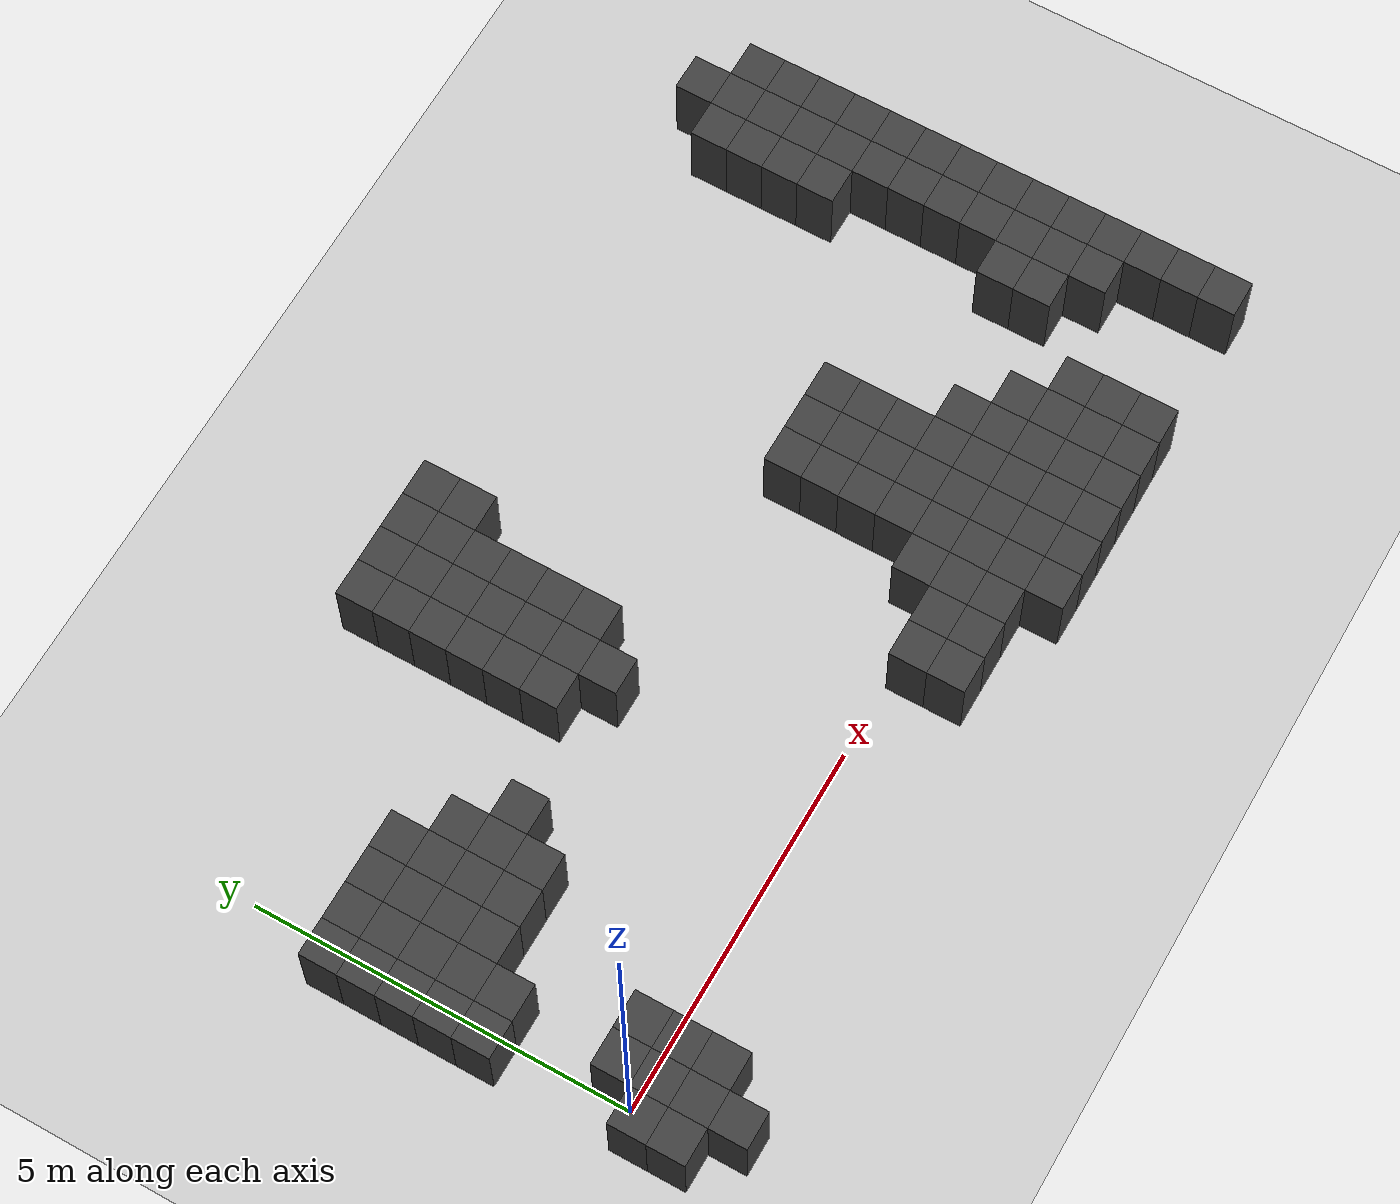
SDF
<sdf version="1.7">
 <world name="map_9713">
  <model name="ground_plane">
   <static>true</static>
   <link name="link">
    <collision name="collision">
     <geometry><plane><normal>0 0 1</normal><size>200 200</size></plane></geometry>
    </collision>
    <visual name="visual">
     <geometry><plane><normal>0 0 1</normal><size>200 200</size></plane></geometry>
     <material><ambient>0.8 0.8 0.8 1</ambient><diffuse>0.8 0.8 0.8 1</diffuse></material>
    </visual>
   </link>
  </model>
  <model name="maze_environment">
   <static>true</static>
   <link name="wall_250">
    <pose>3.750 5.750 0.500 0 0 0</pose>
    <collision name="col"><geometry><box><size>0.5 0.5 1.0</size></box></geometry></collision>
    <visual name="vis">
     <geometry><box><size>0.5 0.5 1.0</size></box></geometry>
     <material><ambient>0.15 0.15 0.15 1</ambient><diffuse>0.25 0.25 0.25 1</diffuse></material>
    </visual>
   </link>
   <link name="wall_251">
    <pose>4.250 5.750 0.500 0 0 0</pose>
    <collision name="col"><geometry><box><size>0.5 0.5 1.0</size></box></geometry></collision>
    <visual name="vis">
     <geometry><box><size>0.5 0.5 1.0</size></box></geometry>
     <material><ambient>0.15 0.15 0.15 1</ambient><diffuse>0.25 0.25 0.25 1</diffuse></material>
    </visual>
   </link>
   <link name="wall_252">
    <pose>4.750 5.750 0.500 0 0 0</pose>
    <collision name="col"><geometry><box><size>0.5 0.5 1.0</size></box></geometry></collision>
    <visual name="vis">
     <geometry><box><size>0.5 0.5 1.0</size></box></geometry>
     <material><ambient>0.15 0.15 0.15 1</ambient><diffuse>0.25 0.25 0.25 1</diffuse></material>
    </visual>
   </link>
   <link name="wall_253">
    <pose>5.250 5.750 0.500 0 0 0</pose>
    <collision name="col"><geometry><box><size>0.5 0.5 1.0</size></box></geometry></collision>
    <visual name="vis">
     <geometry><box><size>0.5 0.5 1.0</size></box></geometry>
     <material><ambient>0.15 0.15 0.15 1</ambient><diffuse>0.25 0.25 0.25 1</diffuse></material>
    </visual>
   </link>
   <link name="wall_254">
    <pose>11.750 5.750 0.500 0 0 0</pose>
    <collision name="col"><geometry><box><size>0.5 0.5 1.0</size></box></geometry></collision>
    <visual name="vis">
     <geometry><box><size>0.5 0.5 1.0</size></box></geometry>
     <material><ambient>0.15 0.15 0.15 1</ambient><diffuse>0.25 0.25 0.25 1</diffuse></material>
    </visual>
   </link>
   <link name="wall_264">
    <pose>3.750 5.250 0.500 0 0 0</pose>
    <collision name="col"><geometry><box><size>0.5 0.5 1.0</size></box></geometry></collision>
    <visual name="vis">
     <geometry><box><size>0.5 0.5 1.0</size></box></geometry>
     <material><ambient>0.15 0.15 0.15 1</ambient><diffuse>0.25 0.25 0.25 1</diffuse></material>
    </visual>
   </link>
   <link name="wall_265">
    <pose>4.250 5.250 0.500 0 0 0</pose>
    <collision name="col"><geometry><box><size>0.5 0.5 1.0</size></box></geometry></collision>
    <visual name="vis">
     <geometry><box><size>0.5 0.5 1.0</size></box></geometry>
     <material><ambient>0.15 0.15 0.15 1</ambient><diffuse>0.25 0.25 0.25 1</diffuse></material>
    </visual>
   </link>
   <link name="wall_266">
    <pose>4.750 5.250 0.500 0 0 0</pose>
    <collision name="col"><geometry><box><size>0.5 0.5 1.0</size></box></geometry></collision>
    <visual name="vis">
     <geometry><box><size>0.5 0.5 1.0</size></box></geometry>
     <material><ambient>0.15 0.15 0.15 1</ambient><diffuse>0.25 0.25 0.25 1</diffuse></material>
    </visual>
   </link>
   <link name="wall_267">
    <pose>5.250 5.250 0.500 0 0 0</pose>
    <collision name="col"><geometry><box><size>0.5 0.5 1.0</size></box></geometry></collision>
    <visual name="vis">
     <geometry><box><size>0.5 0.5 1.0</size></box></geometry>
     <material><ambient>0.15 0.15 0.15 1</ambient><diffuse>0.25 0.25 0.25 1</diffuse></material>
    </visual>
   </link>
   <link name="wall_268">
    <pose>11.250 5.250 0.500 0 0 0</pose>
    <collision name="col"><geometry><box><size>0.5 0.5 1.0</size></box></geometry></collision>
    <visual name="vis">
     <geometry><box><size>0.5 0.5 1.0</size></box></geometry>
     <material><ambient>0.15 0.15 0.15 1</ambient><diffuse>0.25 0.25 0.25 1</diffuse></material>
    </visual>
   </link>
   <link name="wall_269">
    <pose>11.750 5.250 0.500 0 0 0</pose>
    <collision name="col"><geometry><box><size>0.5 0.5 1.0</size></box></geometry></collision>
    <visual name="vis">
     <geometry><box><size>0.5 0.5 1.0</size></box></geometry>
     <material><ambient>0.15 0.15 0.15 1</ambient><diffuse>0.25 0.25 0.25 1</diffuse></material>
    </visual>
   </link>
   <link name="wall_270">
    <pose>12.250 5.250 0.500 0 0 0</pose>
    <collision name="col"><geometry><box><size>0.5 0.5 1.0</size></box></geometry></collision>
    <visual name="vis">
     <geometry><box><size>0.5 0.5 1.0</size></box></geometry>
     <material><ambient>0.15 0.15 0.15 1</ambient><diffuse>0.25 0.25 0.25 1</diffuse></material>
    </visual>
   </link>
   <link name="wall_277">
    <pose>3.750 4.750 0.500 0 0 0</pose>
    <collision name="col"><geometry><box><size>0.5 0.5 1.0</size></box></geometry></collision>
    <visual name="vis">
     <geometry><box><size>0.5 0.5 1.0</size></box></geometry>
     <material><ambient>0.15 0.15 0.15 1</ambient><diffuse>0.25 0.25 0.25 1</diffuse></material>
    </visual>
   </link>
   <link name="wall_278">
    <pose>4.250 4.750 0.500 0 0 0</pose>
    <collision name="col"><geometry><box><size>0.5 0.5 1.0</size></box></geometry></collision>
    <visual name="vis">
     <geometry><box><size>0.5 0.5 1.0</size></box></geometry>
     <material><ambient>0.15 0.15 0.15 1</ambient><diffuse>0.25 0.25 0.25 1</diffuse></material>
    </visual>
   </link>
   <link name="wall_279">
    <pose>4.750 4.750 0.500 0 0 0</pose>
    <collision name="col"><geometry><box><size>0.5 0.5 1.0</size></box></geometry></collision>
    <visual name="vis">
     <geometry><box><size>0.5 0.5 1.0</size></box></geometry>
     <material><ambient>0.15 0.15 0.15 1</ambient><diffuse>0.25 0.25 0.25 1</diffuse></material>
    </visual>
   </link>
   <link name="wall_280">
    <pose>11.250 4.750 0.500 0 0 0</pose>
    <collision name="col"><geometry><box><size>0.5 0.5 1.0</size></box></geometry></collision>
    <visual name="vis">
     <geometry><box><size>0.5 0.5 1.0</size></box></geometry>
     <material><ambient>0.15 0.15 0.15 1</ambient><diffuse>0.25 0.25 0.25 1</diffuse></material>
    </visual>
   </link>
   <link name="wall_281">
    <pose>11.750 4.750 0.500 0 0 0</pose>
    <collision name="col"><geometry><box><size>0.5 0.5 1.0</size></box></geometry></collision>
    <visual name="vis">
     <geometry><box><size>0.5 0.5 1.0</size></box></geometry>
     <material><ambient>0.15 0.15 0.15 1</ambient><diffuse>0.25 0.25 0.25 1</diffuse></material>
    </visual>
   </link>
   <link name="wall_282">
    <pose>12.250 4.750 0.500 0 0 0</pose>
    <collision name="col"><geometry><box><size>0.5 0.5 1.0</size></box></geometry></collision>
    <visual name="vis">
     <geometry><box><size>0.5 0.5 1.0</size></box></geometry>
     <material><ambient>0.15 0.15 0.15 1</ambient><diffuse>0.25 0.25 0.25 1</diffuse></material>
    </visual>
   </link>
   <link name="wall_288">
    <pose>3.750 4.250 0.500 0 0 0</pose>
    <collision name="col"><geometry><box><size>0.5 0.5 1.0</size></box></geometry></collision>
    <visual name="vis">
     <geometry><box><size>0.5 0.5 1.0</size></box></geometry>
     <material><ambient>0.15 0.15 0.15 1</ambient><diffuse>0.25 0.25 0.25 1</diffuse></material>
    </visual>
   </link>
   <link name="wall_289">
    <pose>4.250 4.250 0.500 0 0 0</pose>
    <collision name="col"><geometry><box><size>0.5 0.5 1.0</size></box></geometry></collision>
    <visual name="vis">
     <geometry><box><size>0.5 0.5 1.0</size></box></geometry>
     <material><ambient>0.15 0.15 0.15 1</ambient><diffuse>0.25 0.25 0.25 1</diffuse></material>
    </visual>
   </link>
   <link name="wall_290">
    <pose>4.750 4.250 0.500 0 0 0</pose>
    <collision name="col"><geometry><box><size>0.5 0.5 1.0</size></box></geometry></collision>
    <visual name="vis">
     <geometry><box><size>0.5 0.5 1.0</size></box></geometry>
     <material><ambient>0.15 0.15 0.15 1</ambient><diffuse>0.25 0.25 0.25 1</diffuse></material>
    </visual>
   </link>
   <link name="wall_291">
    <pose>11.250 4.250 0.500 0 0 0</pose>
    <collision name="col"><geometry><box><size>0.5 0.5 1.0</size></box></geometry></collision>
    <visual name="vis">
     <geometry><box><size>0.5 0.5 1.0</size></box></geometry>
     <material><ambient>0.15 0.15 0.15 1</ambient><diffuse>0.25 0.25 0.25 1</diffuse></material>
    </visual>
   </link>
   <link name="wall_292">
    <pose>11.750 4.250 0.500 0 0 0</pose>
    <collision name="col"><geometry><box><size>0.5 0.5 1.0</size></box></geometry></collision>
    <visual name="vis">
     <geometry><box><size>0.5 0.5 1.0</size></box></geometry>
     <material><ambient>0.15 0.15 0.15 1</ambient><diffuse>0.25 0.25 0.25 1</diffuse></material>
    </visual>
   </link>
   <link name="wall_293">
    <pose>12.250 4.250 0.500 0 0 0</pose>
    <collision name="col"><geometry><box><size>0.5 0.5 1.0</size></box></geometry></collision>
    <visual name="vis">
     <geometry><box><size>0.5 0.5 1.0</size></box></geometry>
     <material><ambient>0.15 0.15 0.15 1</ambient><diffuse>0.25 0.25 0.25 1</diffuse></material>
    </visual>
   </link>
   <link name="wall_301">
    <pose>-0.250 3.750 0.500 0 0 0</pose>
    <collision name="col"><geometry><box><size>0.5 0.5 1.0</size></box></geometry></collision>
    <visual name="vis">
     <geometry><box><size>0.5 0.5 1.0</size></box></geometry>
     <material><ambient>0.15 0.15 0.15 1</ambient><diffuse>0.25 0.25 0.25 1</diffuse></material>
    </visual>
   </link>
   <link name="wall_302">
    <pose>0.250 3.750 0.500 0 0 0</pose>
    <collision name="col"><geometry><box><size>0.5 0.5 1.0</size></box></geometry></collision>
    <visual name="vis">
     <geometry><box><size>0.5 0.5 1.0</size></box></geometry>
     <material><ambient>0.15 0.15 0.15 1</ambient><diffuse>0.25 0.25 0.25 1</diffuse></material>
    </visual>
   </link>
   <link name="wall_303">
    <pose>0.750 3.750 0.500 0 0 0</pose>
    <collision name="col"><geometry><box><size>0.5 0.5 1.0</size></box></geometry></collision>
    <visual name="vis">
     <geometry><box><size>0.5 0.5 1.0</size></box></geometry>
     <material><ambient>0.15 0.15 0.15 1</ambient><diffuse>0.25 0.25 0.25 1</diffuse></material>
    </visual>
   </link>
   <link name="wall_304">
    <pose>1.250 3.750 0.500 0 0 0</pose>
    <collision name="col"><geometry><box><size>0.5 0.5 1.0</size></box></geometry></collision>
    <visual name="vis">
     <geometry><box><size>0.5 0.5 1.0</size></box></geometry>
     <material><ambient>0.15 0.15 0.15 1</ambient><diffuse>0.25 0.25 0.25 1</diffuse></material>
    </visual>
   </link>
   <link name="wall_305">
    <pose>3.750 3.750 0.500 0 0 0</pose>
    <collision name="col"><geometry><box><size>0.5 0.5 1.0</size></box></geometry></collision>
    <visual name="vis">
     <geometry><box><size>0.5 0.5 1.0</size></box></geometry>
     <material><ambient>0.15 0.15 0.15 1</ambient><diffuse>0.25 0.25 0.25 1</diffuse></material>
    </visual>
   </link>
   <link name="wall_306">
    <pose>4.250 3.750 0.500 0 0 0</pose>
    <collision name="col"><geometry><box><size>0.5 0.5 1.0</size></box></geometry></collision>
    <visual name="vis">
     <geometry><box><size>0.5 0.5 1.0</size></box></geometry>
     <material><ambient>0.15 0.15 0.15 1</ambient><diffuse>0.25 0.25 0.25 1</diffuse></material>
    </visual>
   </link>
   <link name="wall_307">
    <pose>4.750 3.750 0.500 0 0 0</pose>
    <collision name="col"><geometry><box><size>0.5 0.5 1.0</size></box></geometry></collision>
    <visual name="vis">
     <geometry><box><size>0.5 0.5 1.0</size></box></geometry>
     <material><ambient>0.15 0.15 0.15 1</ambient><diffuse>0.25 0.25 0.25 1</diffuse></material>
    </visual>
   </link>
   <link name="wall_308">
    <pose>11.250 3.750 0.500 0 0 0</pose>
    <collision name="col"><geometry><box><size>0.5 0.5 1.0</size></box></geometry></collision>
    <visual name="vis">
     <geometry><box><size>0.5 0.5 1.0</size></box></geometry>
     <material><ambient>0.15 0.15 0.15 1</ambient><diffuse>0.25 0.25 0.25 1</diffuse></material>
    </visual>
   </link>
   <link name="wall_309">
    <pose>11.750 3.750 0.500 0 0 0</pose>
    <collision name="col"><geometry><box><size>0.5 0.5 1.0</size></box></geometry></collision>
    <visual name="vis">
     <geometry><box><size>0.5 0.5 1.0</size></box></geometry>
     <material><ambient>0.15 0.15 0.15 1</ambient><diffuse>0.25 0.25 0.25 1</diffuse></material>
    </visual>
   </link>
   <link name="wall_310">
    <pose>12.250 3.750 0.500 0 0 0</pose>
    <collision name="col"><geometry><box><size>0.5 0.5 1.0</size></box></geometry></collision>
    <visual name="vis">
     <geometry><box><size>0.5 0.5 1.0</size></box></geometry>
     <material><ambient>0.15 0.15 0.15 1</ambient><diffuse>0.25 0.25 0.25 1</diffuse></material>
    </visual>
   </link>
   <link name="wall_318">
    <pose>-0.250 3.250 0.500 0 0 0</pose>
    <collision name="col"><geometry><box><size>0.5 0.5 1.0</size></box></geometry></collision>
    <visual name="vis">
     <geometry><box><size>0.5 0.5 1.0</size></box></geometry>
     <material><ambient>0.15 0.15 0.15 1</ambient><diffuse>0.25 0.25 0.25 1</diffuse></material>
    </visual>
   </link>
   <link name="wall_319">
    <pose>0.250 3.250 0.500 0 0 0</pose>
    <collision name="col"><geometry><box><size>0.5 0.5 1.0</size></box></geometry></collision>
    <visual name="vis">
     <geometry><box><size>0.5 0.5 1.0</size></box></geometry>
     <material><ambient>0.15 0.15 0.15 1</ambient><diffuse>0.25 0.25 0.25 1</diffuse></material>
    </visual>
   </link>
   <link name="wall_320">
    <pose>0.750 3.250 0.500 0 0 0</pose>
    <collision name="col"><geometry><box><size>0.5 0.5 1.0</size></box></geometry></collision>
    <visual name="vis">
     <geometry><box><size>0.5 0.5 1.0</size></box></geometry>
     <material><ambient>0.15 0.15 0.15 1</ambient><diffuse>0.25 0.25 0.25 1</diffuse></material>
    </visual>
   </link>
   <link name="wall_321">
    <pose>1.250 3.250 0.500 0 0 0</pose>
    <collision name="col"><geometry><box><size>0.5 0.5 1.0</size></box></geometry></collision>
    <visual name="vis">
     <geometry><box><size>0.5 0.5 1.0</size></box></geometry>
     <material><ambient>0.15 0.15 0.15 1</ambient><diffuse>0.25 0.25 0.25 1</diffuse></material>
    </visual>
   </link>
   <link name="wall_322">
    <pose>1.750 3.250 0.500 0 0 0</pose>
    <collision name="col"><geometry><box><size>0.5 0.5 1.0</size></box></geometry></collision>
    <visual name="vis">
     <geometry><box><size>0.5 0.5 1.0</size></box></geometry>
     <material><ambient>0.15 0.15 0.15 1</ambient><diffuse>0.25 0.25 0.25 1</diffuse></material>
    </visual>
   </link>
   <link name="wall_323">
    <pose>3.750 3.250 0.500 0 0 0</pose>
    <collision name="col"><geometry><box><size>0.5 0.5 1.0</size></box></geometry></collision>
    <visual name="vis">
     <geometry><box><size>0.5 0.5 1.0</size></box></geometry>
     <material><ambient>0.15 0.15 0.15 1</ambient><diffuse>0.25 0.25 0.25 1</diffuse></material>
    </visual>
   </link>
   <link name="wall_324">
    <pose>4.250 3.250 0.500 0 0 0</pose>
    <collision name="col"><geometry><box><size>0.5 0.5 1.0</size></box></geometry></collision>
    <visual name="vis">
     <geometry><box><size>0.5 0.5 1.0</size></box></geometry>
     <material><ambient>0.15 0.15 0.15 1</ambient><diffuse>0.25 0.25 0.25 1</diffuse></material>
    </visual>
   </link>
   <link name="wall_325">
    <pose>4.750 3.250 0.500 0 0 0</pose>
    <collision name="col"><geometry><box><size>0.5 0.5 1.0</size></box></geometry></collision>
    <visual name="vis">
     <geometry><box><size>0.5 0.5 1.0</size></box></geometry>
     <material><ambient>0.15 0.15 0.15 1</ambient><diffuse>0.25 0.25 0.25 1</diffuse></material>
    </visual>
   </link>
   <link name="wall_326">
    <pose>11.750 3.250 0.500 0 0 0</pose>
    <collision name="col"><geometry><box><size>0.5 0.5 1.0</size></box></geometry></collision>
    <visual name="vis">
     <geometry><box><size>0.5 0.5 1.0</size></box></geometry>
     <material><ambient>0.15 0.15 0.15 1</ambient><diffuse>0.25 0.25 0.25 1</diffuse></material>
    </visual>
   </link>
   <link name="wall_327">
    <pose>12.250 3.250 0.500 0 0 0</pose>
    <collision name="col"><geometry><box><size>0.5 0.5 1.0</size></box></geometry></collision>
    <visual name="vis">
     <geometry><box><size>0.5 0.5 1.0</size></box></geometry>
     <material><ambient>0.15 0.15 0.15 1</ambient><diffuse>0.25 0.25 0.25 1</diffuse></material>
    </visual>
   </link>
   <link name="wall_337">
    <pose>-0.250 2.750 0.500 0 0 0</pose>
    <collision name="col"><geometry><box><size>0.5 0.5 1.0</size></box></geometry></collision>
    <visual name="vis">
     <geometry><box><size>0.5 0.5 1.0</size></box></geometry>
     <material><ambient>0.15 0.15 0.15 1</ambient><diffuse>0.25 0.25 0.25 1</diffuse></material>
    </visual>
   </link>
   <link name="wall_338">
    <pose>0.250 2.750 0.500 0 0 0</pose>
    <collision name="col"><geometry><box><size>0.5 0.5 1.0</size></box></geometry></collision>
    <visual name="vis">
     <geometry><box><size>0.5 0.5 1.0</size></box></geometry>
     <material><ambient>0.15 0.15 0.15 1</ambient><diffuse>0.25 0.25 0.25 1</diffuse></material>
    </visual>
   </link>
   <link name="wall_339">
    <pose>0.750 2.750 0.500 0 0 0</pose>
    <collision name="col"><geometry><box><size>0.5 0.5 1.0</size></box></geometry></collision>
    <visual name="vis">
     <geometry><box><size>0.5 0.5 1.0</size></box></geometry>
     <material><ambient>0.15 0.15 0.15 1</ambient><diffuse>0.25 0.25 0.25 1</diffuse></material>
    </visual>
   </link>
   <link name="wall_340">
    <pose>1.250 2.750 0.500 0 0 0</pose>
    <collision name="col"><geometry><box><size>0.5 0.5 1.0</size></box></geometry></collision>
    <visual name="vis">
     <geometry><box><size>0.5 0.5 1.0</size></box></geometry>
     <material><ambient>0.15 0.15 0.15 1</ambient><diffuse>0.25 0.25 0.25 1</diffuse></material>
    </visual>
   </link>
   <link name="wall_341">
    <pose>1.750 2.750 0.500 0 0 0</pose>
    <collision name="col"><geometry><box><size>0.5 0.5 1.0</size></box></geometry></collision>
    <visual name="vis">
     <geometry><box><size>0.5 0.5 1.0</size></box></geometry>
     <material><ambient>0.15 0.15 0.15 1</ambient><diffuse>0.25 0.25 0.25 1</diffuse></material>
    </visual>
   </link>
   <link name="wall_342">
    <pose>2.250 2.750 0.500 0 0 0</pose>
    <collision name="col"><geometry><box><size>0.5 0.5 1.0</size></box></geometry></collision>
    <visual name="vis">
     <geometry><box><size>0.5 0.5 1.0</size></box></geometry>
     <material><ambient>0.15 0.15 0.15 1</ambient><diffuse>0.25 0.25 0.25 1</diffuse></material>
    </visual>
   </link>
   <link name="wall_343">
    <pose>4.250 2.750 0.500 0 0 0</pose>
    <collision name="col"><geometry><box><size>0.5 0.5 1.0</size></box></geometry></collision>
    <visual name="vis">
     <geometry><box><size>0.5 0.5 1.0</size></box></geometry>
     <material><ambient>0.15 0.15 0.15 1</ambient><diffuse>0.25 0.25 0.25 1</diffuse></material>
    </visual>
   </link>
   <link name="wall_344">
    <pose>11.750 2.750 0.500 0 0 0</pose>
    <collision name="col"><geometry><box><size>0.5 0.5 1.0</size></box></geometry></collision>
    <visual name="vis">
     <geometry><box><size>0.5 0.5 1.0</size></box></geometry>
     <material><ambient>0.15 0.15 0.15 1</ambient><diffuse>0.25 0.25 0.25 1</diffuse></material>
    </visual>
   </link>
   <link name="wall_345">
    <pose>12.250 2.750 0.500 0 0 0</pose>
    <collision name="col"><geometry><box><size>0.5 0.5 1.0</size></box></geometry></collision>
    <visual name="vis">
     <geometry><box><size>0.5 0.5 1.0</size></box></geometry>
     <material><ambient>0.15 0.15 0.15 1</ambient><diffuse>0.25 0.25 0.25 1</diffuse></material>
    </visual>
   </link>
   <link name="wall_358">
    <pose>-0.250 2.250 0.500 0 0 0</pose>
    <collision name="col"><geometry><box><size>0.5 0.5 1.0</size></box></geometry></collision>
    <visual name="vis">
     <geometry><box><size>0.5 0.5 1.0</size></box></geometry>
     <material><ambient>0.15 0.15 0.15 1</ambient><diffuse>0.25 0.25 0.25 1</diffuse></material>
    </visual>
   </link>
   <link name="wall_359">
    <pose>0.250 2.250 0.500 0 0 0</pose>
    <collision name="col"><geometry><box><size>0.5 0.5 1.0</size></box></geometry></collision>
    <visual name="vis">
     <geometry><box><size>0.5 0.5 1.0</size></box></geometry>
     <material><ambient>0.15 0.15 0.15 1</ambient><diffuse>0.25 0.25 0.25 1</diffuse></material>
    </visual>
   </link>
   <link name="wall_360">
    <pose>0.750 2.250 0.500 0 0 0</pose>
    <collision name="col"><geometry><box><size>0.5 0.5 1.0</size></box></geometry></collision>
    <visual name="vis">
     <geometry><box><size>0.5 0.5 1.0</size></box></geometry>
     <material><ambient>0.15 0.15 0.15 1</ambient><diffuse>0.25 0.25 0.25 1</diffuse></material>
    </visual>
   </link>
   <link name="wall_361">
    <pose>1.250 2.250 0.500 0 0 0</pose>
    <collision name="col"><geometry><box><size>0.5 0.5 1.0</size></box></geometry></collision>
    <visual name="vis">
     <geometry><box><size>0.5 0.5 1.0</size></box></geometry>
     <material><ambient>0.15 0.15 0.15 1</ambient><diffuse>0.25 0.25 0.25 1</diffuse></material>
    </visual>
   </link>
   <link name="wall_362">
    <pose>1.750 2.250 0.500 0 0 0</pose>
    <collision name="col"><geometry><box><size>0.5 0.5 1.0</size></box></geometry></collision>
    <visual name="vis">
     <geometry><box><size>0.5 0.5 1.0</size></box></geometry>
     <material><ambient>0.15 0.15 0.15 1</ambient><diffuse>0.25 0.25 0.25 1</diffuse></material>
    </visual>
   </link>
   <link name="wall_363">
    <pose>7.750 2.250 0.500 0 0 0</pose>
    <collision name="col"><geometry><box><size>0.5 0.5 1.0</size></box></geometry></collision>
    <visual name="vis">
     <geometry><box><size>0.5 0.5 1.0</size></box></geometry>
     <material><ambient>0.15 0.15 0.15 1</ambient><diffuse>0.25 0.25 0.25 1</diffuse></material>
    </visual>
   </link>
   <link name="wall_364">
    <pose>8.250 2.250 0.500 0 0 0</pose>
    <collision name="col"><geometry><box><size>0.5 0.5 1.0</size></box></geometry></collision>
    <visual name="vis">
     <geometry><box><size>0.5 0.5 1.0</size></box></geometry>
     <material><ambient>0.15 0.15 0.15 1</ambient><diffuse>0.25 0.25 0.25 1</diffuse></material>
    </visual>
   </link>
   <link name="wall_365">
    <pose>8.750 2.250 0.500 0 0 0</pose>
    <collision name="col"><geometry><box><size>0.5 0.5 1.0</size></box></geometry></collision>
    <visual name="vis">
     <geometry><box><size>0.5 0.5 1.0</size></box></geometry>
     <material><ambient>0.15 0.15 0.15 1</ambient><diffuse>0.25 0.25 0.25 1</diffuse></material>
    </visual>
   </link>
   <link name="wall_366">
    <pose>11.750 2.250 0.500 0 0 0</pose>
    <collision name="col"><geometry><box><size>0.5 0.5 1.0</size></box></geometry></collision>
    <visual name="vis">
     <geometry><box><size>0.5 0.5 1.0</size></box></geometry>
     <material><ambient>0.15 0.15 0.15 1</ambient><diffuse>0.25 0.25 0.25 1</diffuse></material>
    </visual>
   </link>
   <link name="wall_367">
    <pose>12.250 2.250 0.500 0 0 0</pose>
    <collision name="col"><geometry><box><size>0.5 0.5 1.0</size></box></geometry></collision>
    <visual name="vis">
     <geometry><box><size>0.5 0.5 1.0</size></box></geometry>
     <material><ambient>0.15 0.15 0.15 1</ambient><diffuse>0.25 0.25 0.25 1</diffuse></material>
    </visual>
   </link>
   <link name="wall_378">
    <pose>-0.250 1.750 0.500 0 0 0</pose>
    <collision name="col"><geometry><box><size>0.5 0.5 1.0</size></box></geometry></collision>
    <visual name="vis">
     <geometry><box><size>0.5 0.5 1.0</size></box></geometry>
     <material><ambient>0.15 0.15 0.15 1</ambient><diffuse>0.25 0.25 0.25 1</diffuse></material>
    </visual>
   </link>
   <link name="wall_379">
    <pose>0.250 1.750 0.500 0 0 0</pose>
    <collision name="col"><geometry><box><size>0.5 0.5 1.0</size></box></geometry></collision>
    <visual name="vis">
     <geometry><box><size>0.5 0.5 1.0</size></box></geometry>
     <material><ambient>0.15 0.15 0.15 1</ambient><diffuse>0.25 0.25 0.25 1</diffuse></material>
    </visual>
   </link>
   <link name="wall_380">
    <pose>7.750 1.750 0.500 0 0 0</pose>
    <collision name="col"><geometry><box><size>0.5 0.5 1.0</size></box></geometry></collision>
    <visual name="vis">
     <geometry><box><size>0.5 0.5 1.0</size></box></geometry>
     <material><ambient>0.15 0.15 0.15 1</ambient><diffuse>0.25 0.25 0.25 1</diffuse></material>
    </visual>
   </link>
   <link name="wall_381">
    <pose>8.250 1.750 0.500 0 0 0</pose>
    <collision name="col"><geometry><box><size>0.5 0.5 1.0</size></box></geometry></collision>
    <visual name="vis">
     <geometry><box><size>0.5 0.5 1.0</size></box></geometry>
     <material><ambient>0.15 0.15 0.15 1</ambient><diffuse>0.25 0.25 0.25 1</diffuse></material>
    </visual>
   </link>
   <link name="wall_382">
    <pose>8.750 1.750 0.500 0 0 0</pose>
    <collision name="col"><geometry><box><size>0.5 0.5 1.0</size></box></geometry></collision>
    <visual name="vis">
     <geometry><box><size>0.5 0.5 1.0</size></box></geometry>
     <material><ambient>0.15 0.15 0.15 1</ambient><diffuse>0.25 0.25 0.25 1</diffuse></material>
    </visual>
   </link>
   <link name="wall_383">
    <pose>11.750 1.750 0.500 0 0 0</pose>
    <collision name="col"><geometry><box><size>0.5 0.5 1.0</size></box></geometry></collision>
    <visual name="vis">
     <geometry><box><size>0.5 0.5 1.0</size></box></geometry>
     <material><ambient>0.15 0.15 0.15 1</ambient><diffuse>0.25 0.25 0.25 1</diffuse></material>
    </visual>
   </link>
   <link name="wall_384">
    <pose>12.250 1.750 0.500 0 0 0</pose>
    <collision name="col"><geometry><box><size>0.5 0.5 1.0</size></box></geometry></collision>
    <visual name="vis">
     <geometry><box><size>0.5 0.5 1.0</size></box></geometry>
     <material><ambient>0.15 0.15 0.15 1</ambient><diffuse>0.25 0.25 0.25 1</diffuse></material>
    </visual>
   </link>
   <link name="wall_394">
    <pose>7.750 1.250 0.500 0 0 0</pose>
    <collision name="col"><geometry><box><size>0.5 0.5 1.0</size></box></geometry></collision>
    <visual name="vis">
     <geometry><box><size>0.5 0.5 1.0</size></box></geometry>
     <material><ambient>0.15 0.15 0.15 1</ambient><diffuse>0.25 0.25 0.25 1</diffuse></material>
    </visual>
   </link>
   <link name="wall_395">
    <pose>8.250 1.250 0.500 0 0 0</pose>
    <collision name="col"><geometry><box><size>0.5 0.5 1.0</size></box></geometry></collision>
    <visual name="vis">
     <geometry><box><size>0.5 0.5 1.0</size></box></geometry>
     <material><ambient>0.15 0.15 0.15 1</ambient><diffuse>0.25 0.25 0.25 1</diffuse></material>
    </visual>
   </link>
   <link name="wall_396">
    <pose>8.750 1.250 0.500 0 0 0</pose>
    <collision name="col"><geometry><box><size>0.5 0.5 1.0</size></box></geometry></collision>
    <visual name="vis">
     <geometry><box><size>0.5 0.5 1.0</size></box></geometry>
     <material><ambient>0.15 0.15 0.15 1</ambient><diffuse>0.25 0.25 0.25 1</diffuse></material>
    </visual>
   </link>
   <link name="wall_397">
    <pose>11.250 1.250 0.500 0 0 0</pose>
    <collision name="col"><geometry><box><size>0.5 0.5 1.0</size></box></geometry></collision>
    <visual name="vis">
     <geometry><box><size>0.5 0.5 1.0</size></box></geometry>
     <material><ambient>0.15 0.15 0.15 1</ambient><diffuse>0.25 0.25 0.25 1</diffuse></material>
    </visual>
   </link>
   <link name="wall_398">
    <pose>11.750 1.250 0.500 0 0 0</pose>
    <collision name="col"><geometry><box><size>0.5 0.5 1.0</size></box></geometry></collision>
    <visual name="vis">
     <geometry><box><size>0.5 0.5 1.0</size></box></geometry>
     <material><ambient>0.15 0.15 0.15 1</ambient><diffuse>0.25 0.25 0.25 1</diffuse></material>
    </visual>
   </link>
   <link name="wall_399">
    <pose>12.250 1.250 0.500 0 0 0</pose>
    <collision name="col"><geometry><box><size>0.5 0.5 1.0</size></box></geometry></collision>
    <visual name="vis">
     <geometry><box><size>0.5 0.5 1.0</size></box></geometry>
     <material><ambient>0.15 0.15 0.15 1</ambient><diffuse>0.25 0.25 0.25 1</diffuse></material>
    </visual>
   </link>
   <link name="wall_408">
    <pose>7.750 0.750 0.500 0 0 0</pose>
    <collision name="col"><geometry><box><size>0.5 0.5 1.0</size></box></geometry></collision>
    <visual name="vis">
     <geometry><box><size>0.5 0.5 1.0</size></box></geometry>
     <material><ambient>0.15 0.15 0.15 1</ambient><diffuse>0.25 0.25 0.25 1</diffuse></material>
    </visual>
   </link>
   <link name="wall_409">
    <pose>8.250 0.750 0.500 0 0 0</pose>
    <collision name="col"><geometry><box><size>0.5 0.5 1.0</size></box></geometry></collision>
    <visual name="vis">
     <geometry><box><size>0.5 0.5 1.0</size></box></geometry>
     <material><ambient>0.15 0.15 0.15 1</ambient><diffuse>0.25 0.25 0.25 1</diffuse></material>
    </visual>
   </link>
   <link name="wall_410">
    <pose>8.750 0.750 0.500 0 0 0</pose>
    <collision name="col"><geometry><box><size>0.5 0.5 1.0</size></box></geometry></collision>
    <visual name="vis">
     <geometry><box><size>0.5 0.5 1.0</size></box></geometry>
     <material><ambient>0.15 0.15 0.15 1</ambient><diffuse>0.25 0.25 0.25 1</diffuse></material>
    </visual>
   </link>
   <link name="wall_411">
    <pose>9.250 0.750 0.500 0 0 0</pose>
    <collision name="col"><geometry><box><size>0.5 0.5 1.0</size></box></geometry></collision>
    <visual name="vis">
     <geometry><box><size>0.5 0.5 1.0</size></box></geometry>
     <material><ambient>0.15 0.15 0.15 1</ambient><diffuse>0.25 0.25 0.25 1</diffuse></material>
    </visual>
   </link>
   <link name="wall_412">
    <pose>11.250 0.750 0.500 0 0 0</pose>
    <collision name="col"><geometry><box><size>0.5 0.5 1.0</size></box></geometry></collision>
    <visual name="vis">
     <geometry><box><size>0.5 0.5 1.0</size></box></geometry>
     <material><ambient>0.15 0.15 0.15 1</ambient><diffuse>0.25 0.25 0.25 1</diffuse></material>
    </visual>
   </link>
   <link name="wall_413">
    <pose>11.750 0.750 0.500 0 0 0</pose>
    <collision name="col"><geometry><box><size>0.5 0.5 1.0</size></box></geometry></collision>
    <visual name="vis">
     <geometry><box><size>0.5 0.5 1.0</size></box></geometry>
     <material><ambient>0.15 0.15 0.15 1</ambient><diffuse>0.25 0.25 0.25 1</diffuse></material>
    </visual>
   </link>
   <link name="wall_414">
    <pose>12.250 0.750 0.500 0 0 0</pose>
    <collision name="col"><geometry><box><size>0.5 0.5 1.0</size></box></geometry></collision>
    <visual name="vis">
     <geometry><box><size>0.5 0.5 1.0</size></box></geometry>
     <material><ambient>0.15 0.15 0.15 1</ambient><diffuse>0.25 0.25 0.25 1</diffuse></material>
    </visual>
   </link>
   <link name="wall_425">
    <pose>0.250 0.250 0.500 0 0 0</pose>
    <collision name="col"><geometry><box><size>0.5 0.5 1.0</size></box></geometry></collision>
    <visual name="vis">
     <geometry><box><size>0.5 0.5 1.0</size></box></geometry>
     <material><ambient>0.15 0.15 0.15 1</ambient><diffuse>0.25 0.25 0.25 1</diffuse></material>
    </visual>
   </link>
   <link name="wall_426">
    <pose>0.750 0.250 0.500 0 0 0</pose>
    <collision name="col"><geometry><box><size>0.5 0.5 1.0</size></box></geometry></collision>
    <visual name="vis">
     <geometry><box><size>0.5 0.5 1.0</size></box></geometry>
     <material><ambient>0.15 0.15 0.15 1</ambient><diffuse>0.25 0.25 0.25 1</diffuse></material>
    </visual>
   </link>
   <link name="wall_427">
    <pose>7.250 0.250 0.500 0 0 0</pose>
    <collision name="col"><geometry><box><size>0.5 0.5 1.0</size></box></geometry></collision>
    <visual name="vis">
     <geometry><box><size>0.5 0.5 1.0</size></box></geometry>
     <material><ambient>0.15 0.15 0.15 1</ambient><diffuse>0.25 0.25 0.25 1</diffuse></material>
    </visual>
   </link>
   <link name="wall_428">
    <pose>7.750 0.250 0.500 0 0 0</pose>
    <collision name="col"><geometry><box><size>0.5 0.5 1.0</size></box></geometry></collision>
    <visual name="vis">
     <geometry><box><size>0.5 0.5 1.0</size></box></geometry>
     <material><ambient>0.15 0.15 0.15 1</ambient><diffuse>0.25 0.25 0.25 1</diffuse></material>
    </visual>
   </link>
   <link name="wall_429">
    <pose>8.250 0.250 0.500 0 0 0</pose>
    <collision name="col"><geometry><box><size>0.5 0.5 1.0</size></box></geometry></collision>
    <visual name="vis">
     <geometry><box><size>0.5 0.5 1.0</size></box></geometry>
     <material><ambient>0.15 0.15 0.15 1</ambient><diffuse>0.25 0.25 0.25 1</diffuse></material>
    </visual>
   </link>
   <link name="wall_430">
    <pose>8.750 0.250 0.500 0 0 0</pose>
    <collision name="col"><geometry><box><size>0.5 0.5 1.0</size></box></geometry></collision>
    <visual name="vis">
     <geometry><box><size>0.5 0.5 1.0</size></box></geometry>
     <material><ambient>0.15 0.15 0.15 1</ambient><diffuse>0.25 0.25 0.25 1</diffuse></material>
    </visual>
   </link>
   <link name="wall_431">
    <pose>9.250 0.250 0.500 0 0 0</pose>
    <collision name="col"><geometry><box><size>0.5 0.5 1.0</size></box></geometry></collision>
    <visual name="vis">
     <geometry><box><size>0.5 0.5 1.0</size></box></geometry>
     <material><ambient>0.15 0.15 0.15 1</ambient><diffuse>0.25 0.25 0.25 1</diffuse></material>
    </visual>
   </link>
   <link name="wall_432">
    <pose>9.750 0.250 0.500 0 0 0</pose>
    <collision name="col"><geometry><box><size>0.5 0.5 1.0</size></box></geometry></collision>
    <visual name="vis">
     <geometry><box><size>0.5 0.5 1.0</size></box></geometry>
     <material><ambient>0.15 0.15 0.15 1</ambient><diffuse>0.25 0.25 0.25 1</diffuse></material>
    </visual>
   </link>
   <link name="wall_433">
    <pose>11.750 0.250 0.500 0 0 0</pose>
    <collision name="col"><geometry><box><size>0.5 0.5 1.0</size></box></geometry></collision>
    <visual name="vis">
     <geometry><box><size>0.5 0.5 1.0</size></box></geometry>
     <material><ambient>0.15 0.15 0.15 1</ambient><diffuse>0.25 0.25 0.25 1</diffuse></material>
    </visual>
   </link>
   <link name="wall_434">
    <pose>12.250 0.250 0.500 0 0 0</pose>
    <collision name="col"><geometry><box><size>0.5 0.5 1.0</size></box></geometry></collision>
    <visual name="vis">
     <geometry><box><size>0.5 0.5 1.0</size></box></geometry>
     <material><ambient>0.15 0.15 0.15 1</ambient><diffuse>0.25 0.25 0.25 1</diffuse></material>
    </visual>
   </link>
   <link name="wall_448">
    <pose>-0.250 -0.250 0.500 0 0 0</pose>
    <collision name="col"><geometry><box><size>0.5 0.5 1.0</size></box></geometry></collision>
    <visual name="vis">
     <geometry><box><size>0.5 0.5 1.0</size></box></geometry>
     <material><ambient>0.15 0.15 0.15 1</ambient><diffuse>0.25 0.25 0.25 1</diffuse></material>
    </visual>
   </link>
   <link name="wall_449">
    <pose>0.250 -0.250 0.500 0 0 0</pose>
    <collision name="col"><geometry><box><size>0.5 0.5 1.0</size></box></geometry></collision>
    <visual name="vis">
     <geometry><box><size>0.5 0.5 1.0</size></box></geometry>
     <material><ambient>0.15 0.15 0.15 1</ambient><diffuse>0.25 0.25 0.25 1</diffuse></material>
    </visual>
   </link>
   <link name="wall_450">
    <pose>0.750 -0.250 0.500 0 0 0</pose>
    <collision name="col"><geometry><box><size>0.5 0.5 1.0</size></box></geometry></collision>
    <visual name="vis">
     <geometry><box><size>0.5 0.5 1.0</size></box></geometry>
     <material><ambient>0.15 0.15 0.15 1</ambient><diffuse>0.25 0.25 0.25 1</diffuse></material>
    </visual>
   </link>
   <link name="wall_451">
    <pose>6.250 -0.250 0.500 0 0 0</pose>
    <collision name="col"><geometry><box><size>0.5 0.5 1.0</size></box></geometry></collision>
    <visual name="vis">
     <geometry><box><size>0.5 0.5 1.0</size></box></geometry>
     <material><ambient>0.15 0.15 0.15 1</ambient><diffuse>0.25 0.25 0.25 1</diffuse></material>
    </visual>
   </link>
   <link name="wall_452">
    <pose>6.750 -0.250 0.500 0 0 0</pose>
    <collision name="col"><geometry><box><size>0.5 0.5 1.0</size></box></geometry></collision>
    <visual name="vis">
     <geometry><box><size>0.5 0.5 1.0</size></box></geometry>
     <material><ambient>0.15 0.15 0.15 1</ambient><diffuse>0.25 0.25 0.25 1</diffuse></material>
    </visual>
   </link>
   <link name="wall_453">
    <pose>7.250 -0.250 0.500 0 0 0</pose>
    <collision name="col"><geometry><box><size>0.5 0.5 1.0</size></box></geometry></collision>
    <visual name="vis">
     <geometry><box><size>0.5 0.5 1.0</size></box></geometry>
     <material><ambient>0.15 0.15 0.15 1</ambient><diffuse>0.25 0.25 0.25 1</diffuse></material>
    </visual>
   </link>
   <link name="wall_454">
    <pose>7.750 -0.250 0.500 0 0 0</pose>
    <collision name="col"><geometry><box><size>0.5 0.5 1.0</size></box></geometry></collision>
    <visual name="vis">
     <geometry><box><size>0.5 0.5 1.0</size></box></geometry>
     <material><ambient>0.15 0.15 0.15 1</ambient><diffuse>0.25 0.25 0.25 1</diffuse></material>
    </visual>
   </link>
   <link name="wall_455">
    <pose>8.250 -0.250 0.500 0 0 0</pose>
    <collision name="col"><geometry><box><size>0.5 0.5 1.0</size></box></geometry></collision>
    <visual name="vis">
     <geometry><box><size>0.5 0.5 1.0</size></box></geometry>
     <material><ambient>0.15 0.15 0.15 1</ambient><diffuse>0.25 0.25 0.25 1</diffuse></material>
    </visual>
   </link>
   <link name="wall_456">
    <pose>8.750 -0.250 0.500 0 0 0</pose>
    <collision name="col"><geometry><box><size>0.5 0.5 1.0</size></box></geometry></collision>
    <visual name="vis">
     <geometry><box><size>0.5 0.5 1.0</size></box></geometry>
     <material><ambient>0.15 0.15 0.15 1</ambient><diffuse>0.25 0.25 0.25 1</diffuse></material>
    </visual>
   </link>
   <link name="wall_457">
    <pose>9.250 -0.250 0.500 0 0 0</pose>
    <collision name="col"><geometry><box><size>0.5 0.5 1.0</size></box></geometry></collision>
    <visual name="vis">
     <geometry><box><size>0.5 0.5 1.0</size></box></geometry>
     <material><ambient>0.15 0.15 0.15 1</ambient><diffuse>0.25 0.25 0.25 1</diffuse></material>
    </visual>
   </link>
   <link name="wall_458">
    <pose>9.750 -0.250 0.500 0 0 0</pose>
    <collision name="col"><geometry><box><size>0.5 0.5 1.0</size></box></geometry></collision>
    <visual name="vis">
     <geometry><box><size>0.5 0.5 1.0</size></box></geometry>
     <material><ambient>0.15 0.15 0.15 1</ambient><diffuse>0.25 0.25 0.25 1</diffuse></material>
    </visual>
   </link>
   <link name="wall_459">
    <pose>10.250 -0.250 0.500 0 0 0</pose>
    <collision name="col"><geometry><box><size>0.5 0.5 1.0</size></box></geometry></collision>
    <visual name="vis">
     <geometry><box><size>0.5 0.5 1.0</size></box></geometry>
     <material><ambient>0.15 0.15 0.15 1</ambient><diffuse>0.25 0.25 0.25 1</diffuse></material>
    </visual>
   </link>
   <link name="wall_460">
    <pose>12.250 -0.250 0.500 0 0 0</pose>
    <collision name="col"><geometry><box><size>0.5 0.5 1.0</size></box></geometry></collision>
    <visual name="vis">
     <geometry><box><size>0.5 0.5 1.0</size></box></geometry>
     <material><ambient>0.15 0.15 0.15 1</ambient><diffuse>0.25 0.25 0.25 1</diffuse></material>
    </visual>
   </link>
   <link name="wall_476">
    <pose>-0.250 -0.750 0.500 0 0 0</pose>
    <collision name="col"><geometry><box><size>0.5 0.5 1.0</size></box></geometry></collision>
    <visual name="vis">
     <geometry><box><size>0.5 0.5 1.0</size></box></geometry>
     <material><ambient>0.15 0.15 0.15 1</ambient><diffuse>0.25 0.25 0.25 1</diffuse></material>
    </visual>
   </link>
   <link name="wall_477">
    <pose>0.250 -0.750 0.500 0 0 0</pose>
    <collision name="col"><geometry><box><size>0.5 0.5 1.0</size></box></geometry></collision>
    <visual name="vis">
     <geometry><box><size>0.5 0.5 1.0</size></box></geometry>
     <material><ambient>0.15 0.15 0.15 1</ambient><diffuse>0.25 0.25 0.25 1</diffuse></material>
    </visual>
   </link>
   <link name="wall_478">
    <pose>0.750 -0.750 0.500 0 0 0</pose>
    <collision name="col"><geometry><box><size>0.5 0.5 1.0</size></box></geometry></collision>
    <visual name="vis">
     <geometry><box><size>0.5 0.5 1.0</size></box></geometry>
     <material><ambient>0.15 0.15 0.15 1</ambient><diffuse>0.25 0.25 0.25 1</diffuse></material>
    </visual>
   </link>
   <link name="wall_479">
    <pose>6.250 -0.750 0.500 0 0 0</pose>
    <collision name="col"><geometry><box><size>0.5 0.5 1.0</size></box></geometry></collision>
    <visual name="vis">
     <geometry><box><size>0.5 0.5 1.0</size></box></geometry>
     <material><ambient>0.15 0.15 0.15 1</ambient><diffuse>0.25 0.25 0.25 1</diffuse></material>
    </visual>
   </link>
   <link name="wall_480">
    <pose>6.750 -0.750 0.500 0 0 0</pose>
    <collision name="col"><geometry><box><size>0.5 0.5 1.0</size></box></geometry></collision>
    <visual name="vis">
     <geometry><box><size>0.5 0.5 1.0</size></box></geometry>
     <material><ambient>0.15 0.15 0.15 1</ambient><diffuse>0.25 0.25 0.25 1</diffuse></material>
    </visual>
   </link>
   <link name="wall_481">
    <pose>7.250 -0.750 0.500 0 0 0</pose>
    <collision name="col"><geometry><box><size>0.5 0.5 1.0</size></box></geometry></collision>
    <visual name="vis">
     <geometry><box><size>0.5 0.5 1.0</size></box></geometry>
     <material><ambient>0.15 0.15 0.15 1</ambient><diffuse>0.25 0.25 0.25 1</diffuse></material>
    </visual>
   </link>
   <link name="wall_482">
    <pose>7.750 -0.750 0.500 0 0 0</pose>
    <collision name="col"><geometry><box><size>0.5 0.5 1.0</size></box></geometry></collision>
    <visual name="vis">
     <geometry><box><size>0.5 0.5 1.0</size></box></geometry>
     <material><ambient>0.15 0.15 0.15 1</ambient><diffuse>0.25 0.25 0.25 1</diffuse></material>
    </visual>
   </link>
   <link name="wall_483">
    <pose>8.250 -0.750 0.500 0 0 0</pose>
    <collision name="col"><geometry><box><size>0.5 0.5 1.0</size></box></geometry></collision>
    <visual name="vis">
     <geometry><box><size>0.5 0.5 1.0</size></box></geometry>
     <material><ambient>0.15 0.15 0.15 1</ambient><diffuse>0.25 0.25 0.25 1</diffuse></material>
    </visual>
   </link>
   <link name="wall_484">
    <pose>8.750 -0.750 0.500 0 0 0</pose>
    <collision name="col"><geometry><box><size>0.5 0.5 1.0</size></box></geometry></collision>
    <visual name="vis">
     <geometry><box><size>0.5 0.5 1.0</size></box></geometry>
     <material><ambient>0.15 0.15 0.15 1</ambient><diffuse>0.25 0.25 0.25 1</diffuse></material>
    </visual>
   </link>
   <link name="wall_485">
    <pose>9.250 -0.750 0.500 0 0 0</pose>
    <collision name="col"><geometry><box><size>0.5 0.5 1.0</size></box></geometry></collision>
    <visual name="vis">
     <geometry><box><size>0.5 0.5 1.0</size></box></geometry>
     <material><ambient>0.15 0.15 0.15 1</ambient><diffuse>0.25 0.25 0.25 1</diffuse></material>
    </visual>
   </link>
   <link name="wall_486">
    <pose>9.750 -0.750 0.500 0 0 0</pose>
    <collision name="col"><geometry><box><size>0.5 0.5 1.0</size></box></geometry></collision>
    <visual name="vis">
     <geometry><box><size>0.5 0.5 1.0</size></box></geometry>
     <material><ambient>0.15 0.15 0.15 1</ambient><diffuse>0.25 0.25 0.25 1</diffuse></material>
    </visual>
   </link>
   <link name="wall_487">
    <pose>10.250 -0.750 0.500 0 0 0</pose>
    <collision name="col"><geometry><box><size>0.5 0.5 1.0</size></box></geometry></collision>
    <visual name="vis">
     <geometry><box><size>0.5 0.5 1.0</size></box></geometry>
     <material><ambient>0.15 0.15 0.15 1</ambient><diffuse>0.25 0.25 0.25 1</diffuse></material>
    </visual>
   </link>
   <link name="wall_488">
    <pose>12.250 -0.750 0.500 0 0 0</pose>
    <collision name="col"><geometry><box><size>0.5 0.5 1.0</size></box></geometry></collision>
    <visual name="vis">
     <geometry><box><size>0.5 0.5 1.0</size></box></geometry>
     <material><ambient>0.15 0.15 0.15 1</ambient><diffuse>0.25 0.25 0.25 1</diffuse></material>
    </visual>
   </link>
   <link name="wall_504">
    <pose>0.250 -1.250 0.500 0 0 0</pose>
    <collision name="col"><geometry><box><size>0.5 0.5 1.0</size></box></geometry></collision>
    <visual name="vis">
     <geometry><box><size>0.5 0.5 1.0</size></box></geometry>
     <material><ambient>0.15 0.15 0.15 1</ambient><diffuse>0.25 0.25 0.25 1</diffuse></material>
    </visual>
   </link>
   <link name="wall_505">
    <pose>7.750 -1.250 0.500 0 0 0</pose>
    <collision name="col"><geometry><box><size>0.5 0.5 1.0</size></box></geometry></collision>
    <visual name="vis">
     <geometry><box><size>0.5 0.5 1.0</size></box></geometry>
     <material><ambient>0.15 0.15 0.15 1</ambient><diffuse>0.25 0.25 0.25 1</diffuse></material>
    </visual>
   </link>
   <link name="wall_506">
    <pose>8.250 -1.250 0.500 0 0 0</pose>
    <collision name="col"><geometry><box><size>0.5 0.5 1.0</size></box></geometry></collision>
    <visual name="vis">
     <geometry><box><size>0.5 0.5 1.0</size></box></geometry>
     <material><ambient>0.15 0.15 0.15 1</ambient><diffuse>0.25 0.25 0.25 1</diffuse></material>
    </visual>
   </link>
   <link name="wall_507">
    <pose>8.750 -1.250 0.500 0 0 0</pose>
    <collision name="col"><geometry><box><size>0.5 0.5 1.0</size></box></geometry></collision>
    <visual name="vis">
     <geometry><box><size>0.5 0.5 1.0</size></box></geometry>
     <material><ambient>0.15 0.15 0.15 1</ambient><diffuse>0.25 0.25 0.25 1</diffuse></material>
    </visual>
   </link>
   <link name="wall_508">
    <pose>9.250 -1.250 0.500 0 0 0</pose>
    <collision name="col"><geometry><box><size>0.5 0.5 1.0</size></box></geometry></collision>
    <visual name="vis">
     <geometry><box><size>0.5 0.5 1.0</size></box></geometry>
     <material><ambient>0.15 0.15 0.15 1</ambient><diffuse>0.25 0.25 0.25 1</diffuse></material>
    </visual>
   </link>
   <link name="wall_509">
    <pose>9.750 -1.250 0.500 0 0 0</pose>
    <collision name="col"><geometry><box><size>0.5 0.5 1.0</size></box></geometry></collision>
    <visual name="vis">
     <geometry><box><size>0.5 0.5 1.0</size></box></geometry>
     <material><ambient>0.15 0.15 0.15 1</ambient><diffuse>0.25 0.25 0.25 1</diffuse></material>
    </visual>
   </link>
   <link name="wall_510">
    <pose>10.250 -1.250 0.500 0 0 0</pose>
    <collision name="col"><geometry><box><size>0.5 0.5 1.0</size></box></geometry></collision>
    <visual name="vis">
     <geometry><box><size>0.5 0.5 1.0</size></box></geometry>
     <material><ambient>0.15 0.15 0.15 1</ambient><diffuse>0.25 0.25 0.25 1</diffuse></material>
    </visual>
   </link>
   <link name="wall_511">
    <pose>12.250 -1.250 0.500 0 0 0</pose>
    <collision name="col"><geometry><box><size>0.5 0.5 1.0</size></box></geometry></collision>
    <visual name="vis">
     <geometry><box><size>0.5 0.5 1.0</size></box></geometry>
     <material><ambient>0.15 0.15 0.15 1</ambient><diffuse>0.25 0.25 0.25 1</diffuse></material>
    </visual>
   </link>
  </model>
 </world>
</sdf>
